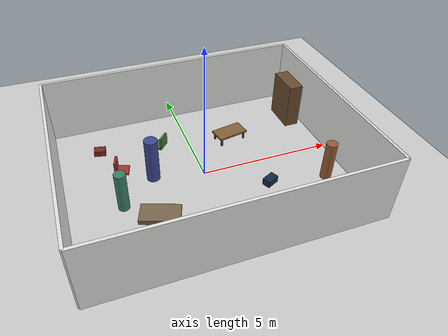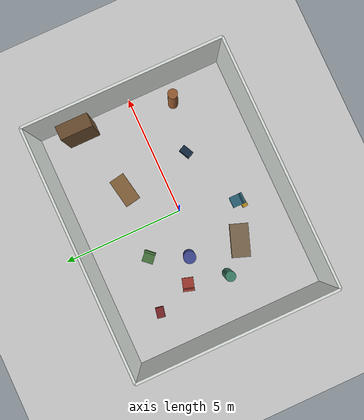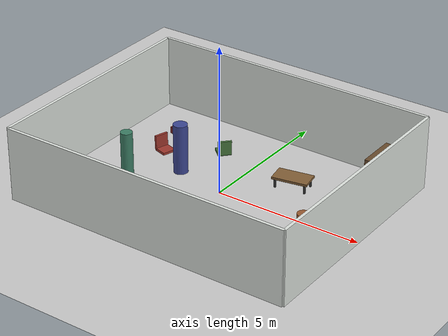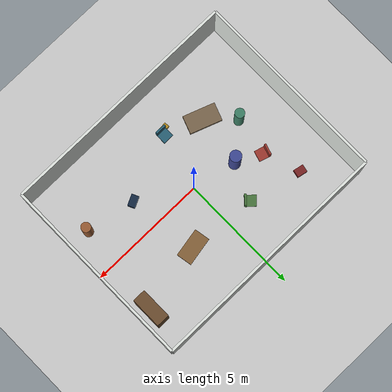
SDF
<?xml version="1.0" ?>
<sdf version="1.6">
  <world name="school_room">

    <include>
      <uri>model://sun</uri>
    </include>

    <include>
      <uri>model://ground_plane</uri>
    </include>

    <physics name="default_physics" default="0" type="ode">
      <max_step_size>0.001</max_step_size>
      <real_time_factor>1</real_time_factor>
      <real_time_update_rate>1000</real_time_update_rate>
    </physics>

    <scene>
      <ambient>0.45 0.45 0.45 1</ambient>
      <background>0.72 0.74 0.76 1</background>
      <shadows>1</shadows>
    </scene>

    <!-- Classroom-sized room: 10 m by 8 m with solid 2.5 m walls. -->
    <model name="room_wall_north">
      <static>true</static>
      <pose>0 4.0 1.25 0 0 0</pose>
      <link name="link">
        <collision name="collision">
          <geometry><box><size>10.0 0.1 2.5</size></box></geometry>
        </collision>
        <visual name="visual">
          <geometry><box><size>10.0 0.1 2.5</size></box></geometry>
          <material>
            <ambient>0.82 0.84 0.82 1</ambient>
            <diffuse>0.88 0.90 0.88 1</diffuse>
          </material>
        </visual>
      </link>
    </model>

    <model name="room_wall_south">
      <static>true</static>
      <pose>0 -4.0 1.25 0 0 0</pose>
      <link name="link">
        <collision name="collision">
          <geometry><box><size>10.0 0.1 2.5</size></box></geometry>
        </collision>
        <visual name="visual">
          <geometry><box><size>10.0 0.1 2.5</size></box></geometry>
          <material>
            <ambient>0.82 0.84 0.82 1</ambient>
            <diffuse>0.88 0.90 0.88 1</diffuse>
          </material>
        </visual>
      </link>
    </model>

    <model name="room_wall_east">
      <static>true</static>
      <pose>5.0 0 1.25 0 0 0</pose>
      <link name="link">
        <collision name="collision">
          <geometry><box><size>0.1 8.0 2.5</size></box></geometry>
        </collision>
        <visual name="visual">
          <geometry><box><size>0.1 8.0 2.5</size></box></geometry>
          <material>
            <ambient>0.82 0.84 0.82 1</ambient>
            <diffuse>0.88 0.90 0.88 1</diffuse>
          </material>
        </visual>
      </link>
    </model>

    <model name="room_wall_west">
      <static>true</static>
      <pose>-5.0 0 1.25 0 0 0</pose>
      <link name="link">
        <collision name="collision">
          <geometry><box><size>0.1 8.0 2.5</size></box></geometry>
        </collision>
        <visual name="visual">
          <geometry><box><size>0.1 8.0 2.5</size></box></geometry>
          <material>
            <ambient>0.82 0.84 0.82 1</ambient>
            <diffuse>0.88 0.90 0.88 1</diffuse>
          </material>
        </visual>
      </link>
    </model>

    <!-- Low tables: top is below the lidar plane but inside the ToF vertical cone. -->
    <model name="low_table_front_left">
      <static>true</static>
      <pose>1.65 1.65 0 0 0 0.18</pose>
      <link name="link">
        <collision name="table_top_collision">
          <pose>0 0 0.34 0 0 0</pose>
          <geometry><box><size>1.2 0.65 0.08</size></box></geometry>
        </collision>
        <visual name="table_top_visual">
          <pose>0 0 0.34 0 0 0</pose>
          <geometry><box><size>1.2 0.65 0.08</size></box></geometry>
          <material>
            <ambient>0.42 0.30 0.18 1</ambient>
            <diffuse>0.52 0.38 0.22 1</diffuse>
          </material>
        </visual>
        <collision name="leg_1_collision">
          <pose>0.5 0.25 0.17 0 0 0</pose>
          <geometry><box><size>0.06 0.06 0.34</size></box></geometry>
        </collision>
        <visual name="leg_1_visual">
          <pose>0.5 0.25 0.17 0 0 0</pose>
          <geometry><box><size>0.06 0.06 0.34</size></box></geometry>
          <material>
            <ambient>0.20 0.20 0.20 1</ambient>
            <diffuse>0.25 0.25 0.25 1</diffuse>
          </material>
        </visual>
        <collision name="leg_2_collision">
          <pose>0.5 -0.25 0.17 0 0 0</pose>
          <geometry><box><size>0.06 0.06 0.34</size></box></geometry>
        </collision>
        <visual name="leg_2_visual">
          <pose>0.5 -0.25 0.17 0 0 0</pose>
          <geometry><box><size>0.06 0.06 0.34</size></box></geometry>
          <material>
            <ambient>0.20 0.20 0.20 1</ambient>
            <diffuse>0.25 0.25 0.25 1</diffuse>
          </material>
        </visual>
        <collision name="leg_3_collision">
          <pose>-0.5 0.25 0.17 0 0 0</pose>
          <geometry><box><size>0.06 0.06 0.34</size></box></geometry>
        </collision>
        <visual name="leg_3_visual">
          <pose>-0.5 0.25 0.17 0 0 0</pose>
          <geometry><box><size>0.06 0.06 0.34</size></box></geometry>
          <material>
            <ambient>0.20 0.20 0.20 1</ambient>
            <diffuse>0.25 0.25 0.25 1</diffuse>
          </material>
        </visual>
        <collision name="leg_4_collision">
          <pose>-0.5 -0.25 0.17 0 0 0</pose>
          <geometry><box><size>0.06 0.06 0.34</size></box></geometry>
        </collision>
        <visual name="leg_4_visual">
          <pose>-0.5 -0.25 0.17 0 0 0</pose>
          <geometry><box><size>0.06 0.06 0.34</size></box></geometry>
          <material>
            <ambient>0.20 0.20 0.20 1</ambient>
            <diffuse>0.25 0.25 0.25 1</diffuse>
          </material>
        </visual>
      </link>
    </model>

    <model name="low_table_back_right">
      <static>true</static>
      <pose>-2.1 -1.7 0 0 0 -0.35</pose>
      <link name="link">
        <collision name="collision">
          <pose>0 0 0.32 0 0 0</pose>
          <geometry><box><size>1.35 0.75 0.18</size></box></geometry>
        </collision>
        <visual name="visual">
          <pose>0 0 0.32 0 0 0</pose>
          <geometry><box><size>1.35 0.75 0.18</size></box></geometry>
          <material>
            <ambient>0.38 0.31 0.24 1</ambient>
            <diffuse>0.48 0.40 0.30 1</diffuse>
          </material>
        </visual>
      </link>
    </model>

    <!-- Chairs: low seats and backs that create awkward low obstacles. -->
    <model name="chair_1">
      <static>true</static>
      <pose>-0.6 -2.25 0 0 0 1.57</pose>
      <link name="link">
        <collision name="seat_collision">
          <pose>0 0 0.25 0 0 0</pose>
          <geometry><box><size>0.45 0.45 0.08</size></box></geometry>
        </collision>
        <visual name="seat_visual">
          <pose>0 0 0.25 0 0 0</pose>
          <geometry><box><size>0.45 0.45 0.08</size></box></geometry>
          <material>
            <ambient>0.12 0.28 0.34 1</ambient>
            <diffuse>0.16 0.38 0.46 1</diffuse>
          </material>
        </visual>
        <collision name="back_collision">
          <pose>-0.22 0 0.48 0 0 0</pose>
          <geometry><box><size>0.08 0.45 0.45</size></box></geometry>
        </collision>
        <visual name="back_visual">
          <pose>-0.22 0 0.48 0 0 0</pose>
          <geometry><box><size>0.08 0.45 0.45</size></box></geometry>
          <material>
            <ambient>0.12 0.28 0.34 1</ambient>
            <diffuse>0.16 0.38 0.46 1</diffuse>
          </material>
        </visual>
      </link>
    </model>

    <model name="chair_2">
      <static>true</static>
      <pose>-2.8 0.9 0 0 0 -0.3</pose>
      <link name="link">
        <collision name="seat_collision">
          <pose>0 0 0.24 0 0 0</pose>
          <geometry><box><size>0.46 0.46 0.08</size></box></geometry>
        </collision>
        <visual name="seat_visual">
          <pose>0 0 0.24 0 0 0</pose>
          <geometry><box><size>0.46 0.46 0.08</size></box></geometry>
          <material>
            <ambient>0.48 0.16 0.14 1</ambient>
            <diffuse>0.62 0.22 0.18 1</diffuse>
          </material>
        </visual>
        <collision name="back_collision">
          <pose>-0.22 0 0.48 0 0 0</pose>
          <geometry><box><size>0.08 0.46 0.48</size></box></geometry>
        </collision>
        <visual name="back_visual">
          <pose>-0.22 0 0.48 0 0 0</pose>
          <geometry><box><size>0.08 0.46 0.48</size></box></geometry>
          <material>
            <ambient>0.48 0.16 0.14 1</ambient>
            <diffuse>0.62 0.22 0.18 1</diffuse>
          </material>
        </visual>
      </link>
    </model>

    <model name="chair_3">
      <static>true</static>
      <pose>-1.2 1.9 0 0 0 2.4</pose>
      <link name="link">
        <collision name="seat_collision">
          <pose>0 0 0.24 0 0 0</pose>
          <geometry><box><size>0.45 0.45 0.08</size></box></geometry>
        </collision>
        <visual name="seat_visual">
          <pose>0 0 0.24 0 0 0</pose>
          <geometry><box><size>0.45 0.45 0.08</size></box></geometry>
          <material>
            <ambient>0.22 0.36 0.18 1</ambient>
            <diffuse>0.28 0.46 0.24 1</diffuse>
          </material>
        </visual>
        <collision name="back_collision">
          <pose>-0.22 0 0.48 0 0 0</pose>
          <geometry><box><size>0.08 0.45 0.48</size></box></geometry>
        </collision>
        <visual name="back_visual">
          <pose>-0.22 0 0.48 0 0 0</pose>
          <geometry><box><size>0.08 0.45 0.48</size></box></geometry>
          <material>
            <ambient>0.22 0.36 0.18 1</ambient>
            <diffuse>0.28 0.46 0.24 1</diffuse>
          </material>
        </visual>
      </link>
    </model>

    <!-- Backpacks and bags: very low hazards for the ToF sensors. -->
    <model name="backpack_center">
      <static>true</static>
      <pose>2.05 -1.25 0.13 0 0 0.45</pose>
      <link name="link">
        <collision name="collision">
          <geometry><box><size>0.48 0.30 0.26</size></box></geometry>
        </collision>
        <visual name="visual">
          <geometry><box><size>0.48 0.30 0.26</size></box></geometry>
          <material>
            <ambient>0.06 0.10 0.16 1</ambient>
            <diffuse>0.08 0.16 0.26 1</diffuse>
          </material>
        </visual>
      </link>
    </model>

    <model name="backpack_near_wall">
      <static>true</static>
      <pose>-3.4 2.4 0.11 0 0 -0.2</pose>
      <link name="link">
        <collision name="collision">
          <geometry><box><size>0.42 0.32 0.22</size></box></geometry>
        </collision>
        <visual name="visual">
          <geometry><box><size>0.42 0.32 0.22</size></box></geometry>
          <material>
            <ambient>0.36 0.10 0.10 1</ambient>
            <diffuse>0.48 0.14 0.14 1</diffuse>
          </material>
        </visual>
      </link>
    </model>

    <model name="floor_lunchbox">
      <static>true</static>
      <pose>-0.8 -2.5 0.08 0 0 0.1</pose>
      <link name="link">
        <collision name="collision">
          <geometry><box><size>0.35 0.22 0.16</size></box></geometry>
        </collision>
        <visual name="visual">
          <geometry><box><size>0.35 0.22 0.16</size></box></geometry>
          <material>
            <ambient>0.55 0.42 0.08 1</ambient>
            <diffuse>0.70 0.54 0.12 1</diffuse>
          </material>
        </visual>
      </link>
    </model>

    <!-- Taller obstacles are person-like for lidar-visible avoidance. -->
    <model name="person_teacher">
      <static>true</static>
      <pose>-1.8 0.4 0.85 0 0 0</pose>
      <link name="link">
        <collision name="collision">
          <geometry><cylinder><radius>0.24</radius><length>1.7</length></cylinder></geometry>
        </collision>
        <visual name="visual">
          <geometry><cylinder><radius>0.24</radius><length>1.7</length></cylinder></geometry>
          <material>
            <ambient>0.18 0.20 0.42 1</ambient>
            <diffuse>0.24 0.28 0.58 1</diffuse>
          </material>
        </visual>
      </link>
    </model>

    <model name="person_student_1">
      <static>true</static>
      <pose>4.1 -1.6 0.75 0 0 0</pose>
      <link name="link">
        <collision name="collision">
          <geometry><cylinder><radius>0.20</radius><length>1.5</length></cylinder></geometry>
        </collision>
        <visual name="visual">
          <geometry><cylinder><radius>0.20</radius><length>1.5</length></cylinder></geometry>
          <material>
            <ambient>0.46 0.28 0.16 1</ambient>
            <diffuse>0.60 0.36 0.20 1</diffuse>
          </material>
        </visual>
      </link>
    </model>

    <model name="person_student_2">
      <static>true</static>
      <pose>-3.1 -0.7 0.75 0 0 0</pose>
      <link name="link">
        <collision name="collision">
          <geometry><cylinder><radius>0.20</radius><length>1.5</length></cylinder></geometry>
        </collision>
        <visual name="visual">
          <geometry><cylinder><radius>0.20</radius><length>1.5</length></cylinder></geometry>
          <material>
            <ambient>0.18 0.38 0.30 1</ambient>
            <diffuse>0.24 0.50 0.40 1</diffuse>
          </material>
        </visual>
      </link>
    </model>

    <model name="bookcase_high_obstacle">
      <static>true</static>
      <pose>4.45 2.3 0.9 0 0 0</pose>
      <link name="link">
        <collision name="collision">
          <geometry><box><size>0.55 1.3 1.8</size></box></geometry>
        </collision>
        <visual name="visual">
          <geometry><box><size>0.55 1.3 1.8</size></box></geometry>
          <material>
            <ambient>0.30 0.22 0.14 1</ambient>
            <diffuse>0.42 0.30 0.18 1</diffuse>
          </material>
        </visual>
      </link>
    </model>

  </world>
</sdf>
